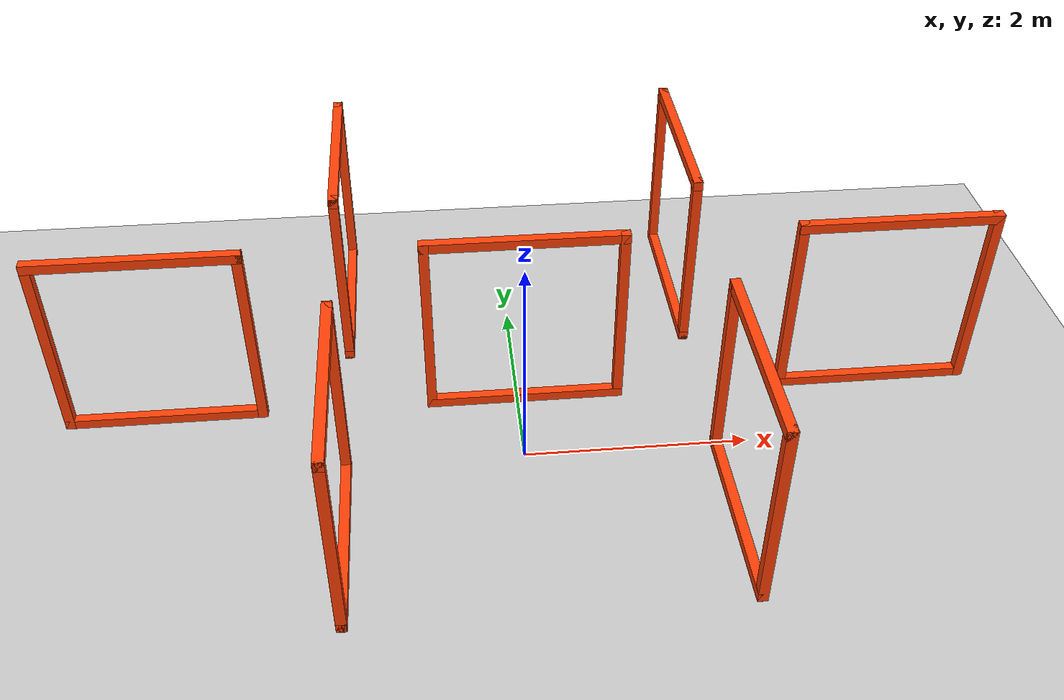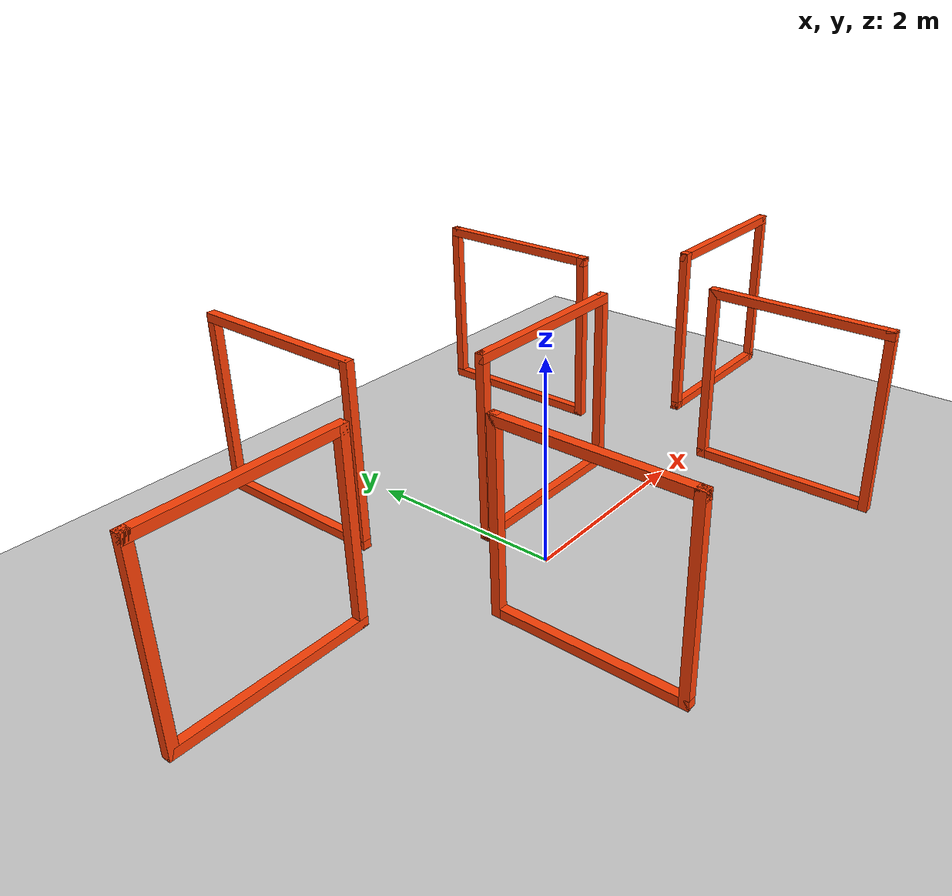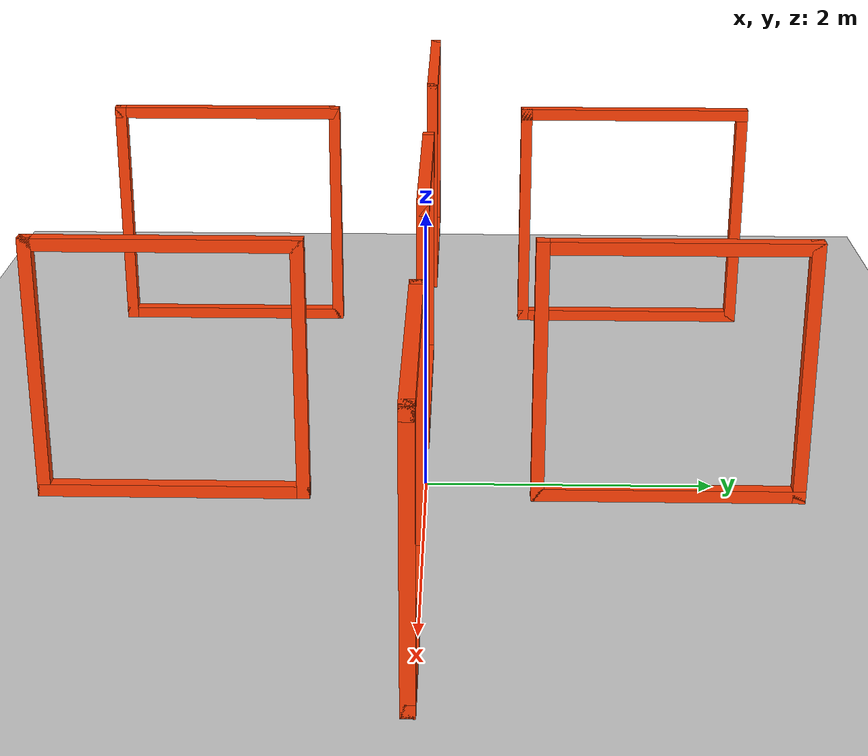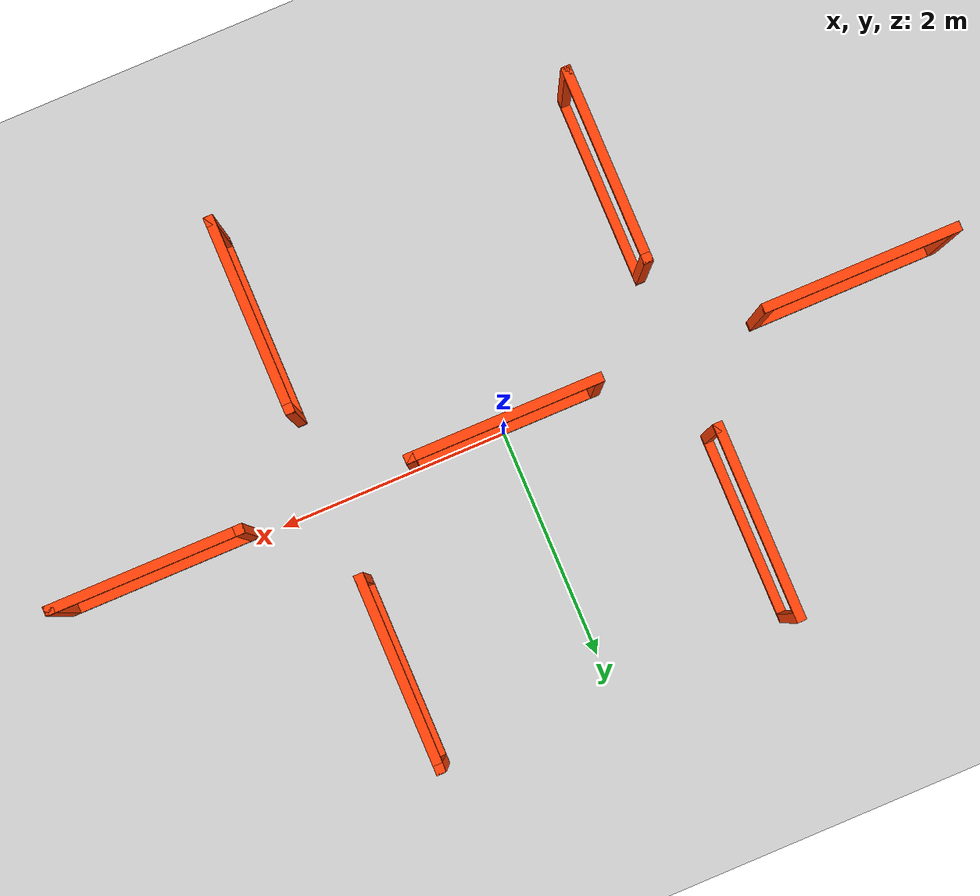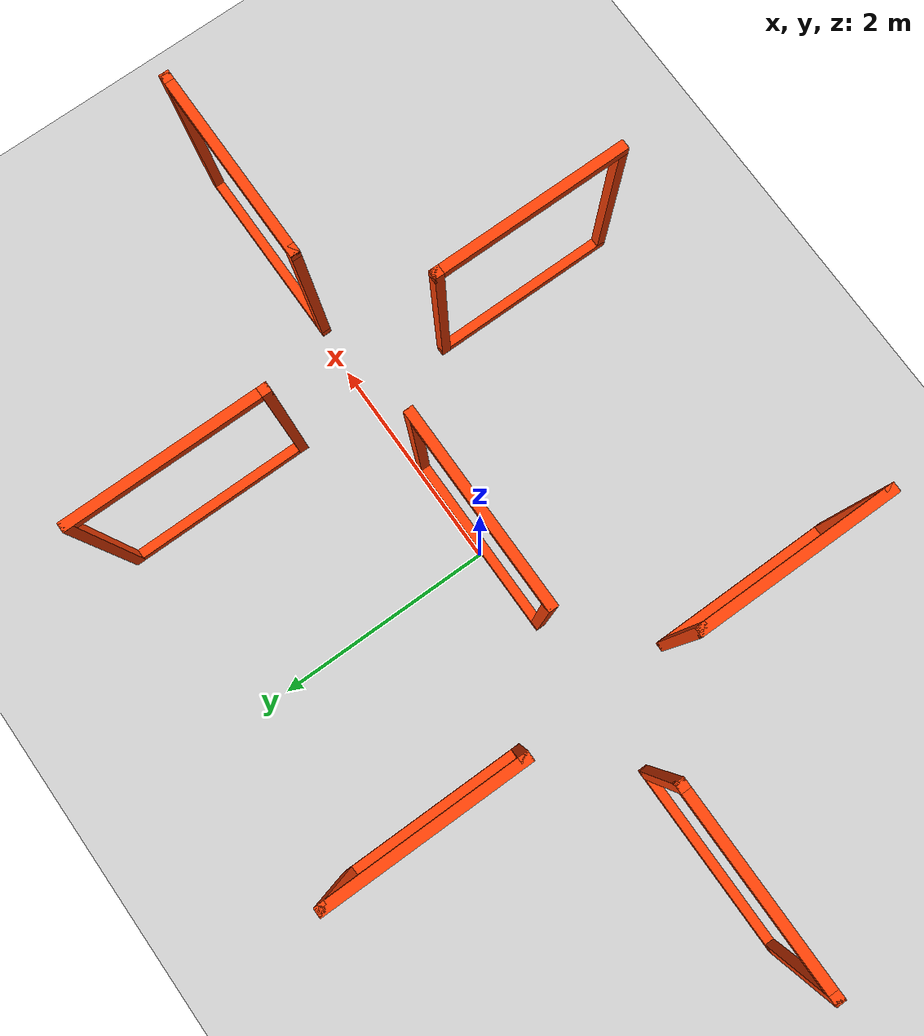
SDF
<sdf version="1.6">
 <world name="cyberzoo_rl_figure8">
  <physics type="ode">
   <max_step_size>0.001</max_step_size>
   <real_time_update_rate>0</real_time_update_rate>
  </physics>
  <scene>
   <ambient>0.9 0.9 0.9 1</ambient>
   <background>0.7 0.7 0.7 1</background>
   <origin_visual>false</origin_visual>
   <shadows>false</shadows>
  </scene>
  <spherical_coordinates>
   <surface_model>EARTH_WGS84</surface_model>
   <latitude_deg>51.9906361</latitude_deg>
   <longitude_deg>4.3767874</longitude_deg>
   <elevation>45.110</elevation>
   <heading_deg>180</heading_deg>
  </spherical_coordinates>
  <include><uri>model://ground_plane</uri><pose>0 0 -0.02 0 0 0.454</pose></include>
  <include>
   <uri>model://rl_figure8_gate</uri>
   <name>rl_f8_gate_1</name>
   <pose>-1.5 1.5 1.5 0 0 -1.570796327</pose>
  </include>
  <include><uri>model://rl_figure8_gate</uri><name>rl_f8_gate_2_6</name><pose>0 0 1.5 0 0 0</pose></include>
  <include>
   <uri>model://rl_figure8_gate</uri>
   <name>rl_f8_gate_3</name>
   <pose>1.5 -1.5 1.5 0 0 -1.570796327</pose>
  </include>
  <include><uri>model://rl_figure8_gate</uri><name>rl_f8_gate_4</name><pose>3.0 0 1.5 0 0 0</pose></include>
  <include>
   <uri>model://rl_figure8_gate</uri>
   <name>rl_f8_gate_5</name>
   <pose>1.5 1.5 1.5 0 0 1.570796327</pose>
  </include>
  <include>
   <uri>model://rl_figure8_gate</uri>
   <name>rl_f8_gate_7</name>
   <pose>-1.5 -1.5 1.5 0 0 1.570796327</pose>
  </include>
  <include><uri>model://rl_figure8_gate</uri><name>rl_f8_gate_8</name><pose>-3.0 0 1.5 0 0 0</pose></include>
 </world>
</sdf>

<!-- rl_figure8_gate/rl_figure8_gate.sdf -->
<sdf version="1.6">
  <model name="rl_figure8_gate">
    <static>true</static>
    <link name="frame">
      <visual name="left_post">
        <pose>-0.79 0 0 0 0 0</pose>
        <geometry><box><size>0.08 0.08 1.66</size></box></geometry>
        <material>
          <ambient>1.0 0.25 0.02 1</ambient>
          <diffuse>1.0 0.25 0.02 1</diffuse>
          <emissive>0.25 0.04 0.0 1</emissive>
        </material>
      </visual>
      <visual name="right_post">
        <pose>0.79 0 0 0 0 0</pose>
        <geometry><box><size>0.08 0.08 1.66</size></box></geometry>
        <material>
          <ambient>1.0 0.25 0.02 1</ambient>
          <diffuse>1.0 0.25 0.02 1</diffuse>
          <emissive>0.25 0.04 0.0 1</emissive>
        </material>
      </visual>
      <visual name="top_bar">
        <pose>0 0 0.79 0 0 0</pose>
        <geometry><box><size>1.66 0.08 0.08</size></box></geometry>
        <material>
          <ambient>1.0 0.25 0.02 1</ambient>
          <diffuse>1.0 0.25 0.02 1</diffuse>
          <emissive>0.25 0.04 0.0 1</emissive>
        </material>
      </visual>
      <visual name="bottom_bar">
        <pose>0 0 -0.79 0 0 0</pose>
        <geometry><box><size>1.66 0.08 0.08</size></box></geometry>
        <material>
          <ambient>1.0 0.25 0.02 1</ambient>
          <diffuse>1.0 0.25 0.02 1</diffuse>
          <emissive>0.25 0.04 0.0 1</emissive>
        </material>
      </visual>
    </link>
  </model>
</sdf>
